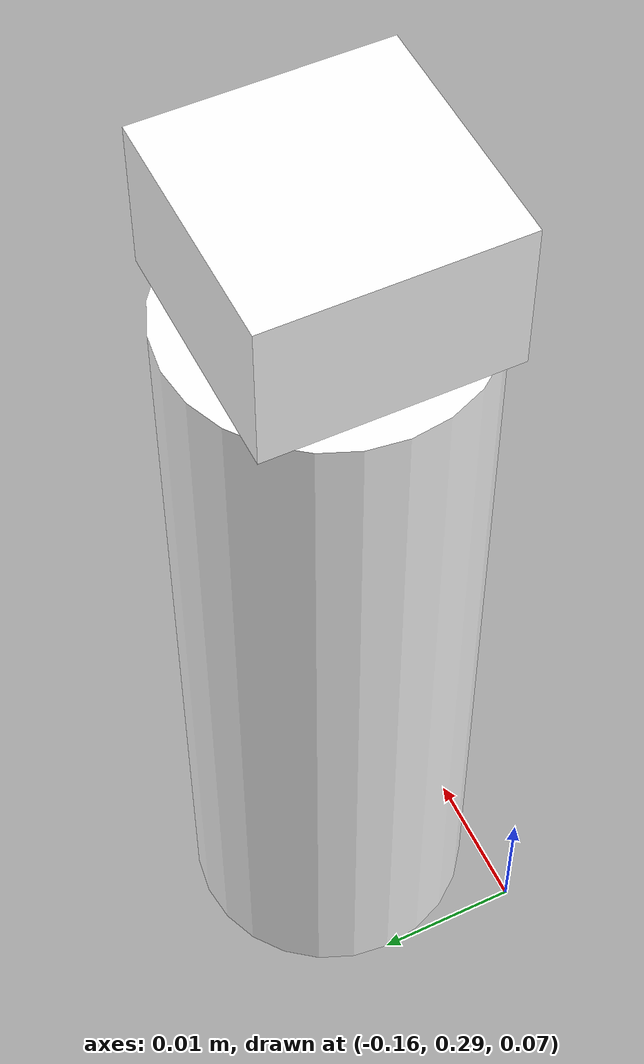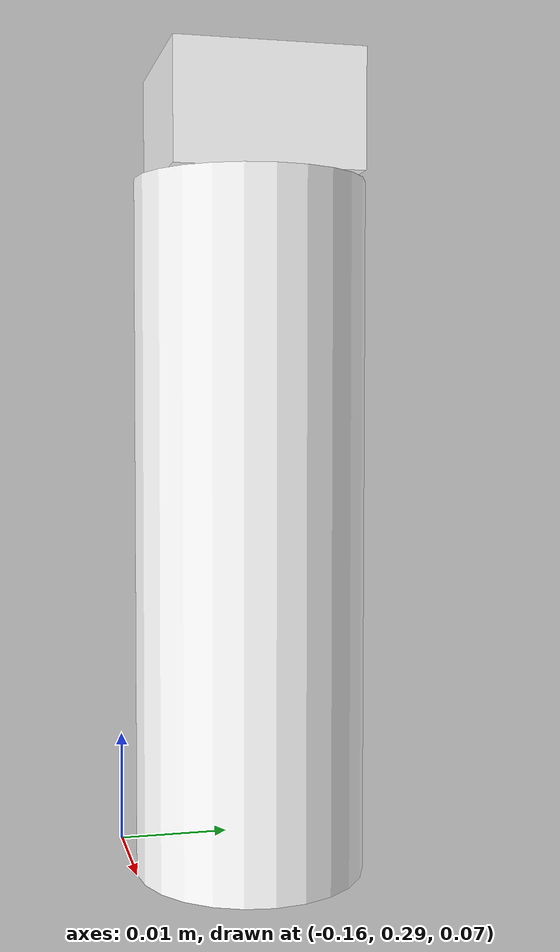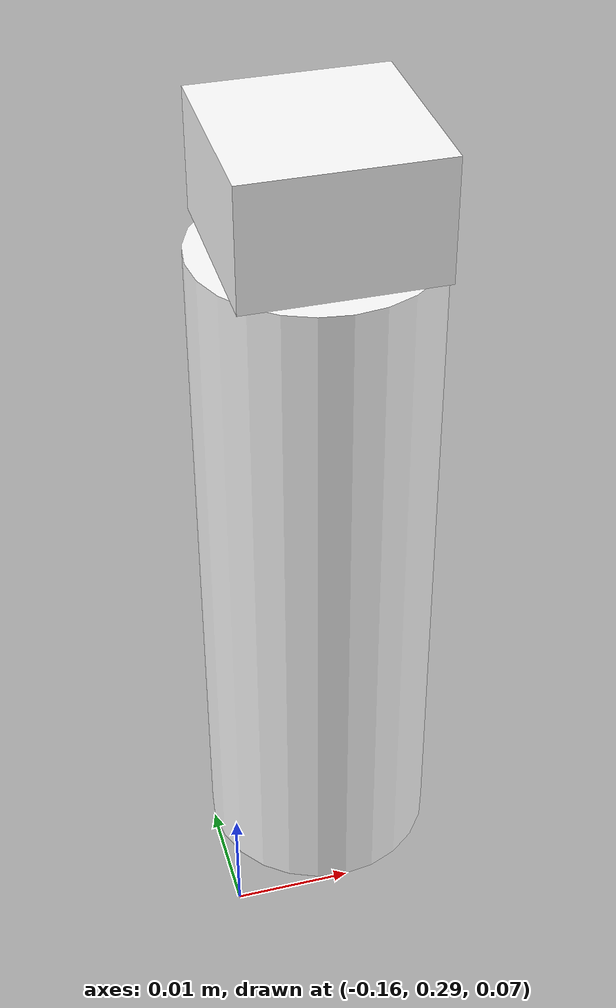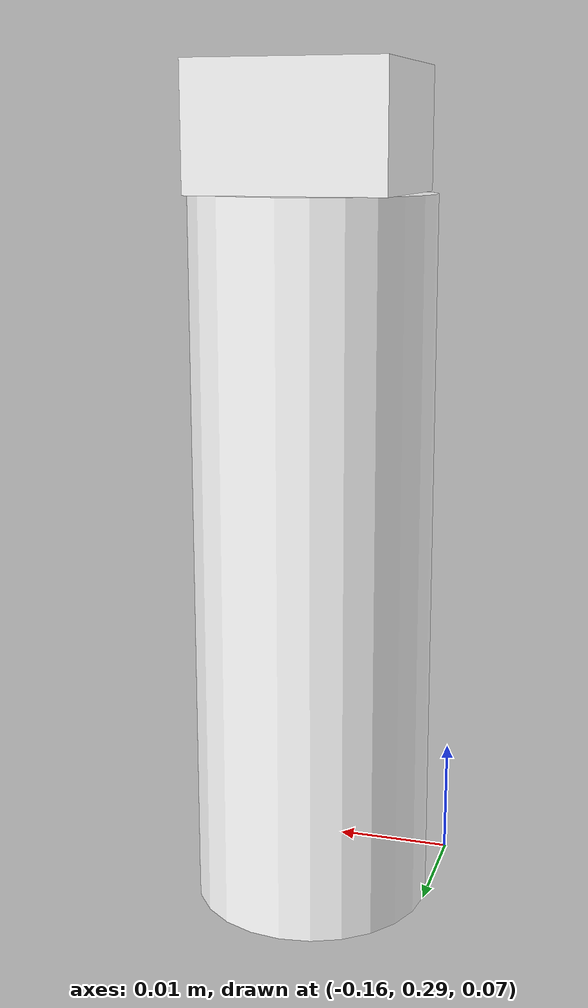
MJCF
<?xml version="1.0" ?>
<mujoco model="sample_vial">
  <compiler angle="radian"/>

  <asset>
    <material name="red_vial" rgb="0.8 0.1 0.1" reflectance="0.2"/>
  </asset>

  <worldbody>
    <!-- Sample vial with cylindrical body and cap -->
    <body name="sample_vial_body" pos="-0.15 0.3 0.1">
      <inertial mass="0.05" diaginv="400 400 400"/>
      <!-- Cylinder body (radius 0.01, height 0.03) -->
      <geom type="cylinder" size="0.01 0.03" material="red_vial"/>
      <!-- Box cap (small box on top) -->
      <geom type="box" size="0.008 0.008 0.005" pos="0 0 0.035" material="red_vial"/>
    </body>
  </worldbody>
</mujoco>
